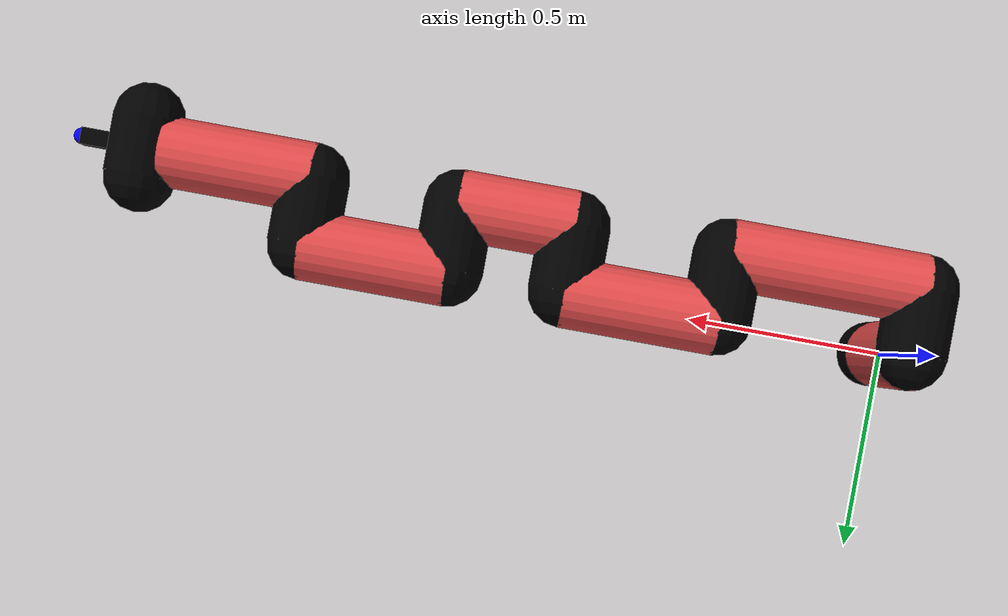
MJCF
<mujoco model="manipulator">
		<compiler angle="degree" coordinate="local" inertiafromgeom="auto" meshdir="meshes/"/>
		<option gravity="0 0 0" integrator="RK4" iterations="30" timestep="0.01"/>

		<default>
		<joint armature="1" limited="true" stiffness="10" damping="15" frictionloss="5.0"/>
		<geom conaffinity="1" condim="3" contype="1" friction=".5 .1 .1" margin="0.002"/>
		<motor ctrllimited="true"/>
		<position ctrllimited="true"/>
		</default>

		<asset>
		<texture builtin="gradient" height="100" rgb1="1.0 1.0 1.0" rgb2="1.0 1.0 1.0" type="skybox" width="100"/>
		<texture builtin="flat" height="32" name="arm_tex" rgb1="0.9 0.3 0.3" type="2d" width="32"/>
		<texture builtin="flat" height="32" name="gripper_tex" rgb1="0.0 0.0 0.0" type="cube" width="32"/>

		<material name="arm_mat" shininess="0.1" specular="0.1" texture="arm_tex"/>
		<material name="gripper_mat" shininess="1" specular="1" texture="gripper_tex"/>
		</asset>

		<worldbody>
		<light cutoff="45" diffuse=".8 .8 .8" dir="0 0.16 -1" directional="false" name="light" pos="0 -2.0 8.0" specular="0.3 0.3 0.3"/>

		<body name="base_link" pos="0 0 -0.1">
		<geom fromto="0 0 0 0 0 0.1" material="arm_mat" name="base_link" rgba="0.0 0.0 0.0 1" size="0.085" type="cylinder"/>
		</body>

		<body name="l1" pos="0 0 0">
<geom fromto="0 0 0 0 0 0.3" material="arm_mat" name="l1" rgba="0.9 0.3 0.3 1" size="0.085" type="cylinder"/>
<geom fromto="0 0 0.3 0 -0.16 0.3" material="arm_mat" name="l1_ex" rgba="0.0 0.0 0.0 1" size="0.085" type="capsule"/>
<joint axis="0 0 1" name="j1" pos="0 0 0" range="-90 90" damping="23.56" frictionloss="12.24"/>

<body name="l2" pos="0 -0.16 0.3">
<geom fromto="0 0 0 0.47 0 0" material="arm_mat" name="l2" rgba="0.9 0.3 0.3 1" size="0.085" type="cylinder"/>
<geom fromto="0.47 0 0 0.47 0.16 0" material="arm_mat" name="l2_ex" rgba="0.0 0.0 0.0 1" size="0.085" type="capsule"/>
<joint axis="0.0 1.0 0.0" name="j2" pos="0 0 0" range="-90 60" damping="23.06" frictionloss="9.55"/>

<body name="l3" pos="0.47 0.16 0">
<geom fromto="0 0 0 0.37 0 0" material="arm_mat" name="l3" rgba="0.9 0.3 0.3 1" size="0.085" type="cylinder"/>
<geom fromto="0.37 0 0 0.37 -0.16 0" material="arm_mat" name="l3_ex" rgba="0.0 0.0 0.0 1" size="0.085" type="capsule"/>
<joint axis="0.0 1.0 0.0" name="j3" pos="0 0 0" range="-30 60" damping="25.03" frictionloss="8.49"/>

<body name="l4" pos="0.37 -0.16 0">
<geom fromto="0 0 0 0.28 0 0" material="arm_mat" name="l4" rgba="0.9 0.3 0.3 1" size="0.085" type="cylinder"/>
<geom fromto="0.28 0 0 0.28 0.16 0" material="arm_mat" name="l4_ex" rgba="0.0 0.0 0.0 1" size="0.085" type="capsule"/>
<joint axis="0.0 1.0 0.0" name="j4" pos="0 0 0" range="-30 60" damping="32.94" frictionloss="12.14"/>

<body name="l5" pos="0.28 0.16 0">
<geom fromto="0 0 0 0.35 0 0" material="arm_mat" name="l5" rgba="0.9 0.3 0.3 1" size="0.085" type="cylinder"/>
<geom fromto="0.35 0 0 0.35 -0.16 0" material="arm_mat" name="l5_ex" rgba="0.0 0.0 0.0 1" size="0.085" type="capsule"/>
<joint axis="0.0 1.0 0.0" name="j5" pos="0 0 0" range="-30 60" damping="31.69" frictionloss="11.54"/>

<body name="l6" pos="0.35 -0.16 0">
<geom fromto="0 0 0 0.36 0 0" material="arm_mat" name="l6" rgba="0.9 0.3 0.3 1" size="0.085" type="cylinder"/>
<joint axis="0.0 1.0 0.0" name="j6" pos="0 0 0" range="-30 60" damping="25.7" frictionloss="8.12"/>

<body name="gripper" pos="0.36 0 0">
<geom fromto="0.05 -0.07 0 0.05 0.07 0" material="gripper_mat" name="gripper" rgba="0.0 0.0 0.0 1" size="0.085" type="capsule"/><joint axis="1 0 0" name="j7" pos="0 0 0" range="-90 90" damping="15" frictionloss="5.0"/><body name="finger" pos="0.1 0 0">
<geom fromto="0 0.0 0 0.1 0.0 0" material="gripper_mat" name="finger" rgba="0.0 0.0 0.0 1" size="0.020 0.06 0.06" type="box"/>
</body>
<site name="current" pos="0.2 0. 0.0" rgba="0. 0. 1.0 1" size="0.02" type="sphere"/>
</body>
</body>
</body>
</body>
</body>
</body>
</body>
</worldbody>
<actuator>
<motor ctrllimited="true" ctrlrange="-1.0 1.0" joint="j1" gear="93.54"/>
<motor ctrllimited="true" ctrlrange="-1.0 1.0" joint="j2" gear="98.52"/>
<motor ctrllimited="true" ctrlrange="-1.0 1.0" joint="j3" gear="99.07"/>
<motor ctrllimited="true" ctrlrange="-1.0 1.0" joint="j4" gear="93.03"/>
<motor ctrllimited="true" ctrlrange="-1.0 1.0" joint="j5" gear="69.41"/>
<motor ctrllimited="true" ctrlrange="-1.0 1.0" joint="j6" gear="90.79"/>
<motor ctrllimited="true" ctrlrange="-1.0 1.0" joint="j7" gear="80"/>
</actuator>
</mujoco>
